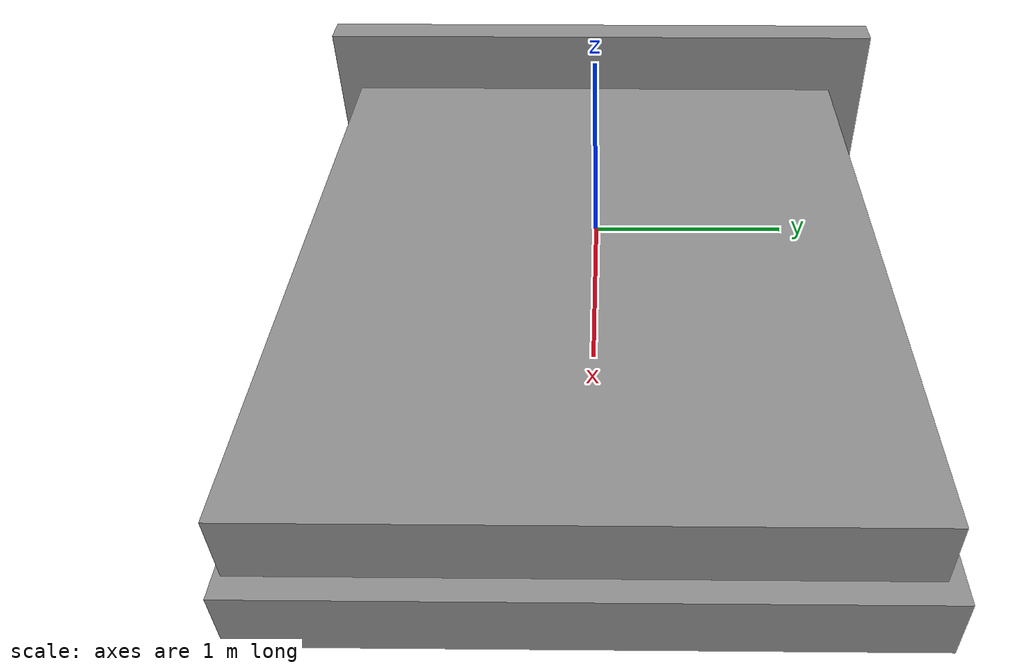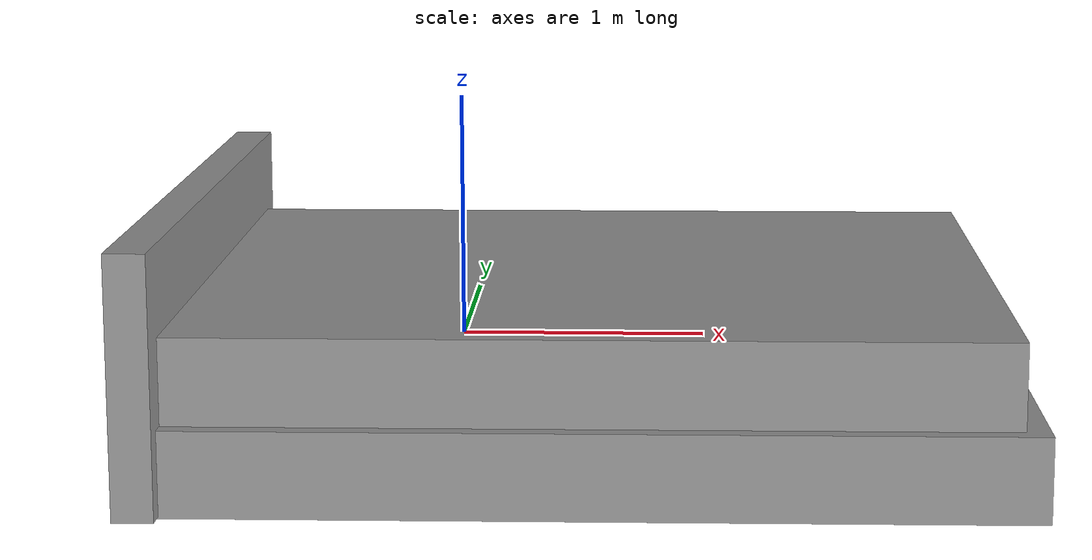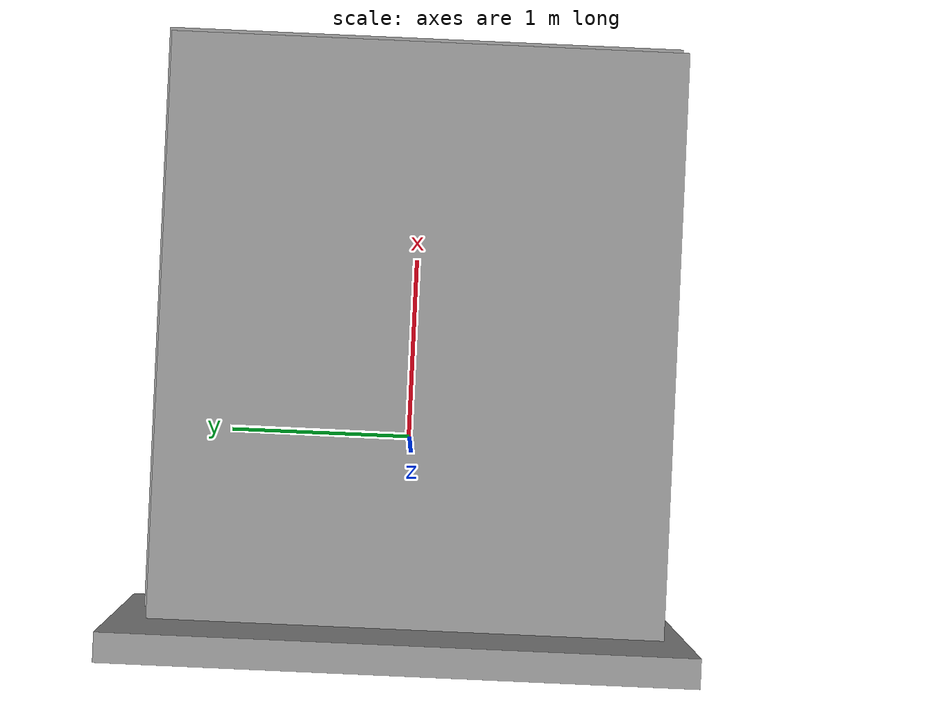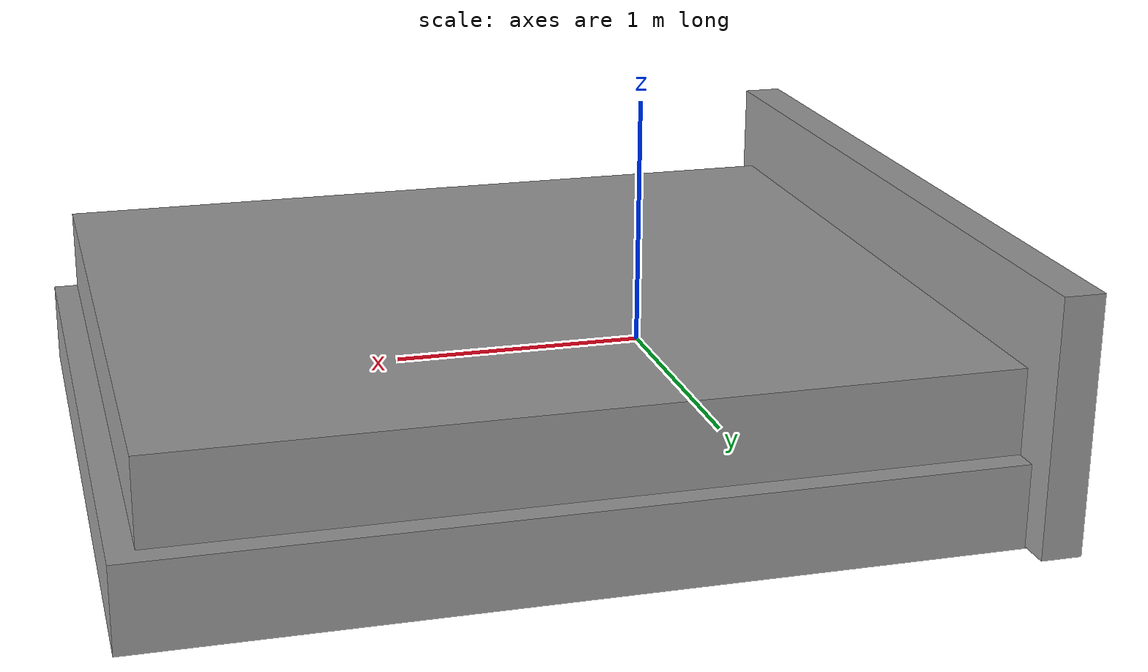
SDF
<?xml version='1.0'?>
<sdf version='1.6'>
  <model name='bedtry1'>
    <link name='link_1'>
      <pose frame=''>-1.11426 0.018994 0.114995 0 -0 0</pose>
      <inertial>
        <mass>0.506131</mass>
        <inertia>
          <ixx>0.462337</ixx>
          <ixy>0</ixy>
          <ixz>0</ixz>
          <iyy>0.0441055</iyy>
          <iyz>0</iyz>
          <izz>0.420361</izz>
        </inertia>
        <pose frame=''>0 0 0 0 -0 0</pose>
      </inertial>
      <self_collide>0</self_collide>
      <kinematic>0</kinematic>
      <visual name='visual'>
        <pose frame=''>0 0 0 0 -0 0</pose>
        <geometry>
          <box>
            <size>0.158906 3.15297 1.01018</size>
          </box>
        </geometry>
        <material>
          <lighting>1</lighting>
          <script>
            <uri>file://media/materials/scripts/gazebo.material</uri>
            <name>Gazebo/Grey</name>
          </script>
          <shader type='pixel'>
            <normal_map>__default__</normal_map>
          </shader>
          <ambient>0.3 0.3 0.3 1</ambient>
          <diffuse>0.7 0.7 0.7 1</diffuse>
          <specular>0.01 0.01 0.01 1</specular>
          <emissive>0 0 0 1</emissive>
        </material>
        <transparency>0</transparency>
        <cast_shadows>1</cast_shadows>
      </visual>
      <collision name='collision'>
        <laser_retro>0</laser_retro>
        <max_contacts>10</max_contacts>
        <pose frame=''>0 0 0 0 -0 0</pose>
        <geometry>
          <box>
            <size>0.158906 3.15297 1.01018</size>
          </box>
        </geometry>
        <surface>
          <friction>
            <ode>
              <mu>1</mu>
              <mu2>1</mu2>
              <fdir1>0 0 0</fdir1>
              <slip1>0</slip1>
              <slip2>0</slip2>
            </ode>
            <torsional>
              <coefficient>1</coefficient>
              <patch_radius>0</patch_radius>
              <surface_radius>0</surface_radius>
              <use_patch_radius>1</use_patch_radius>
              <ode>
                <slip>0</slip>
              </ode>
            </torsional>
          </friction>
          <bounce>
            <restitution_coefficient>0</restitution_coefficient>
            <threshold>1e+06</threshold>
          </bounce>
          <contact>
            <collide_without_contact>0</collide_without_contact>
            <collide_without_contact_bitmask>1</collide_without_contact_bitmask>
            <collide_bitmask>1</collide_bitmask>
            <ode>
              <soft_cfm>0</soft_cfm>
              <soft_erp>0.2</soft_erp>
              <kp>1e+13</kp>
              <kd>1</kd>
              <max_vel>0.01</max_vel>
              <min_depth>0</min_depth>
            </ode>
            <bullet>
              <split_impulse>1</split_impulse>
              <split_impulse_penetration_threshold>-0.01</split_impulse_penetration_threshold>
              <soft_cfm>0</soft_cfm>
              <soft_erp>0.2</soft_erp>
              <kp>1e+13</kp>
              <kd>1</kd>
            </bullet>
          </contact>
        </surface>
      </collision>
    </link>
    <link name='link_2'>
      <pose frame=''>0.540571 0.000416 -0.229697 0 -0 0</pose>
      <inertial>
        <mass>3.41387</mass>
        <inertia>
          <ixx>2.48377</ixx>
          <ixy>0</ixy>
          <ixz>0</ixz>
          <iyy>3.45159</iyy>
          <iyz>0</iyz>
          <izz>5.87135</izz>
        </inertia>
        <pose frame=''>0 0 0 0 -0 0</pose>
      </inertial>
      <self_collide>0</self_collide>
      <kinematic>0</kinematic>
      <visual name='visual'>
        <pose frame=''>0 0 0 0 -0 0</pose>
        <geometry>
          <box>
            <size>3.46699 2.93567 0.335414</size>
          </box>
        </geometry>
        <material>
          <lighting>1</lighting>
          <script>
            <uri>file://media/materials/scripts/gazebo.material</uri>
            <name>Gazebo/Grey</name>
          </script>
          <shader type='pixel'>
            <normal_map>__default__</normal_map>
          </shader>
          <ambient>0.3 0.3 0.3 1</ambient>
          <diffuse>0.7 0.7 0.7 1</diffuse>
          <specular>0.01 0.01 0.01 1</specular>
          <emissive>0 0 0 1</emissive>
        </material>
        <transparency>0</transparency>
        <cast_shadows>1</cast_shadows>
      </visual>
      <collision name='collision'>
        <laser_retro>0</laser_retro>
        <max_contacts>10</max_contacts>
        <pose frame=''>0 0 0 0 -0 0</pose>
        <geometry>
          <box>
            <size>3.46699 2.93567 0.335414</size>
          </box>
        </geometry>
        <surface>
          <friction>
            <ode>
              <mu>1</mu>
              <mu2>1</mu2>
              <fdir1>0 0 0</fdir1>
              <slip1>0</slip1>
              <slip2>0</slip2>
            </ode>
            <torsional>
              <coefficient>1</coefficient>
              <patch_radius>0</patch_radius>
              <surface_radius>0</surface_radius>
              <use_patch_radius>1</use_patch_radius>
              <ode>
                <slip>0</slip>
              </ode>
            </torsional>
          </friction>
          <bounce>
            <restitution_coefficient>0</restitution_coefficient>
            <threshold>1e+06</threshold>
          </bounce>
          <contact>
            <collide_without_contact>0</collide_without_contact>
            <collide_without_contact_bitmask>1</collide_without_contact_bitmask>
            <collide_bitmask>1</collide_bitmask>
            <ode>
              <soft_cfm>0</soft_cfm>
              <soft_erp>0.2</soft_erp>
              <kp>1e+13</kp>
              <kd>1</kd>
              <max_vel>0.01</max_vel>
              <min_depth>0</min_depth>
            </ode>
            <bullet>
              <split_impulse>1</split_impulse>
              <split_impulse_penetration_threshold>-0.01</split_impulse_penetration_threshold>
              <soft_cfm>0</soft_cfm>
              <soft_erp>0.2</soft_erp>
              <kp>1e+13</kp>
              <kd>1</kd>
            </bullet>
          </contact>
        </surface>
      </collision>
    </link>
    <link name='link_3'>
      <pose frame=''>0.573695 -0.01941 0.114702 0 -0 0</pose>
      <inertial>
        <mass>3.04536</mass>
        <inertia>
          <ixx>2.05172</ixx>
          <ixy>0</ixy>
          <ixz>0</ixz>
          <iyy>2.63138</iyy>
          <iyz>0</iyz>
          <izz>4.62552</izz>
        </inertia>
        <pose frame=''>0 0 0 0 -0 0</pose>
      </inertial>
      <self_collide>0</self_collide>
      <kinematic>0</kinematic>
      <visual name='visual'>
        <pose frame=''>0 0 0 0 -0 0</pose>
        <geometry>
          <box>
            <size>3.20239 2.82333 0.336824</size>
          </box>
        </geometry>
        <material>
          <lighting>1</lighting>
          <script>
            <uri>file://media/materials/scripts/gazebo.material</uri>
            <name>Gazebo/Grey</name>
          </script>
          <shader type='pixel'/>
          <ambient>0.3 0.3 0.3 1</ambient>
          <diffuse>0.7 0.7 0.7 1</diffuse>
          <specular>0.01 0.01 0.01 1</specular>
          <emissive>0 0 0 1</emissive>
        </material>
        <transparency>0</transparency>
        <cast_shadows>1</cast_shadows>
      </visual>
      <collision name='collision'>
        <laser_retro>0</laser_retro>
        <max_contacts>10</max_contacts>
        <pose frame=''>0 0 0 0 -0 0</pose>
        <geometry>
          <box>
            <size>3.20239 2.82333 0.336824</size>
          </box>
        </geometry>
        <surface>
          <friction>
            <ode>
              <mu>1</mu>
              <mu2>1</mu2>
              <fdir1>0 0 0</fdir1>
              <slip1>0</slip1>
              <slip2>0</slip2>
            </ode>
            <torsional>
              <coefficient>1</coefficient>
              <patch_radius>0</patch_radius>
              <surface_radius>0</surface_radius>
              <use_patch_radius>1</use_patch_radius>
              <ode>
                <slip>0</slip>
              </ode>
            </torsional>
          </friction>
          <bounce>
            <restitution_coefficient>0</restitution_coefficient>
            <threshold>1e+06</threshold>
          </bounce>
          <contact>
            <collide_without_contact>0</collide_without_contact>
            <collide_without_contact_bitmask>1</collide_without_contact_bitmask>
            <collide_bitmask>1</collide_bitmask>
            <ode>
              <soft_cfm>0</soft_cfm>
              <soft_erp>0.2</soft_erp>
              <kp>1e+13</kp>
              <kd>1</kd>
              <max_vel>0.01</max_vel>
              <min_depth>0</min_depth>
            </ode>
            <bullet>
              <split_impulse>1</split_impulse>
              <split_impulse_penetration_threshold>-0.01</split_impulse_penetration_threshold>
              <soft_cfm>0</soft_cfm>
              <soft_erp>0.2</soft_erp>
              <kp>1e+13</kp>
              <kd>1</kd>
            </bullet>
          </contact>
        </surface>
      </collision>
    </link>
    <joint name='link_1_JOINT_2' type='fixed'>
      <parent>link_1</parent>
      <child>link_3</child>
      <pose frame=''>0 0 0 0 -0 0</pose>
      <physics>
        <ode>
          <limit>
            <cfm>0</cfm>
            <erp>0.2</erp>
          </limit>
          <suspension>
            <cfm>0</cfm>
            <erp>0.2</erp>
          </suspension>
        </ode>
      </physics>
    </joint>
    <joint name='link_2_JOINT_0' type='fixed'>
      <parent>link_2</parent>
      <child>link_1</child>
      <pose frame=''>0 0 0 0 -0 0</pose>
      <physics>
        <ode>
          <limit>
            <cfm>0</cfm>
            <erp>0.2</erp>
          </limit>
          <suspension>
            <cfm>0</cfm>
            <erp>0.2</erp>
          </suspension>
        </ode>
      </physics>
    </joint>
    <joint name='link_3_JOINT_1' type='fixed'>
      <parent>link_3</parent>
      <child>link_2</child>
      <pose frame=''>0 0 0 0 -0 0</pose>
      <physics>
        <ode>
          <limit>
            <cfm>0</cfm>
            <erp>0.2</erp>
          </limit>
          <suspension>
            <cfm>0</cfm>
            <erp>0.2</erp>
          </suspension>
        </ode>
      </physics>
    </joint>
    <static>0</static>
    <allow_auto_disable>1</allow_auto_disable>
  </model>
</sdf>
